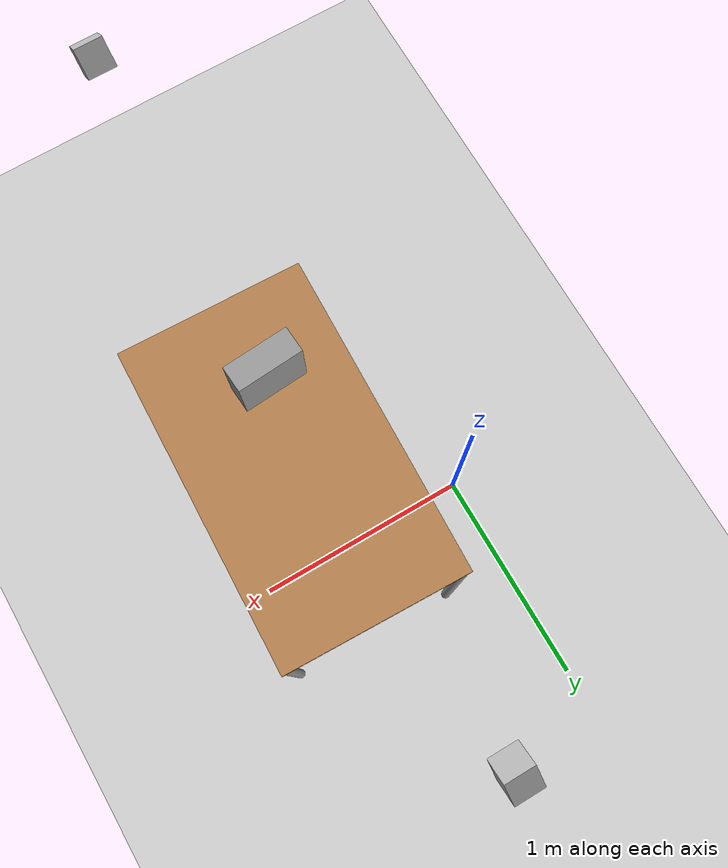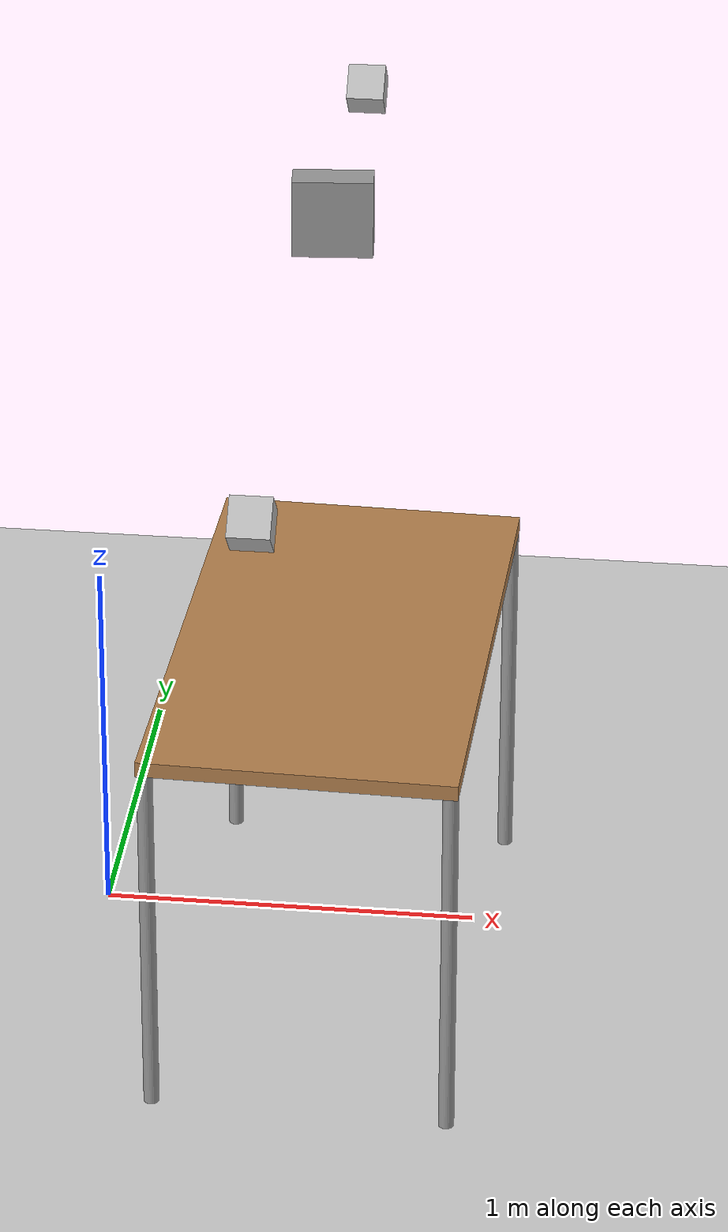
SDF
<sdf version="1.6">
 <world name="default">
  <light name="user_point_light_0" type="point">
   <pose>0.6 0.5 4 0 -0 0</pose>
   <diffuse>0.5 0.5 0.5 1</diffuse>
   <specular>0.1 0.1 0.1 1</specular>
   <attenuation>
    <range>20</range>
    <constant>0.5</constant>
    <linear>0.01</linear>
    <quadratic>0.001</quadratic>
   </attenuation>
   <cast_shadows>0</cast_shadows>
   <direction>0 0 -1</direction>
  </light>
  <light name="user_point_light_1" type="point">
   <pose>0.6 -1. 4 0 -0 0</pose>
   <diffuse>0.5 0.5 0.5 1</diffuse>
   <specular>0.1 0.1 0.1 1</specular>
   <attenuation>
    <range>20</range>
    <constant>0.5</constant>
    <linear>0.01</linear>
    <quadratic>0.001</quadratic>
   </attenuation>
   <cast_shadows>0</cast_shadows>
   <direction>0 0 -1</direction>
  </light>
  <light name="sun" type="directional">
   <pose>0 0 10 0 -0 0</pose>
   <diffuse>0.8 0.8 0.8 1</diffuse>
   <specular>0.1 0.1 0.1 1</specular>
   <attenuation>
    <range>1000</range>
    <constant>0.9</constant>
    <linear>0.01</linear>
    <quadratic>0.001</quadratic>
   </attenuation>
   <direction>-0.5 0.5 -1</direction>
  </light>
  <model name="ground_plane">
   <static>1</static>
   <link name="link">
    <collision name="collision">
     <geometry><plane><normal>0 0 1</normal><size>100 100</size></plane></geometry>
     <surface><friction><ode><mu>100</mu><mu2>50</mu2></ode></friction></surface>
    </collision>
    <visual name="visual">
     <cast_shadows>0</cast_shadows>
     <geometry><plane><normal>0 0 1</normal><size>100 100</size></plane></geometry>
     <material>
      <script><uri>file://media/materials/scripts/gazebo.material</uri><name>Gazebo/Grey</name></script>
     </material>
    </visual>
   </link>
  </model>
  <gravity>0 0 -9.8</gravity>
  <magnetic_field>6e-06 2.3e-05 -4.2e-05</magnetic_field>
  <atmosphere type="adiabatic"/>
  <physics name="default_physics" default="0" type="ode">
   <max_step_size>0.001</max_step_size>
   <real_time_factor>1</real_time_factor>
   <real_time_update_rate>1000</real_time_update_rate>
  </physics>
  <scene><ambient>0.4 0.4 0.4 1</ambient><background>0.7 0.7 0.7 1</background><shadows>1</shadows></scene>
  <spherical_coordinates>
   <surface_model>EARTH_WGS84</surface_model>
   <latitude_deg>0</latitude_deg>
   <longitude_deg>0</longitude_deg>
   <elevation>0</elevation>
   <heading_deg>0</heading_deg>
  </spherical_coordinates>
  <model name="demo_table1">
   <link name="link">
    <pose>-1.11781 1.78287 0 0 -0 0</pose>
    <inertial>
     <inertia><ixx>100</ixx><ixy>0</ixy><ixz>0</ixz><iyy>100</iyy><iyz>0</iyz><izz>100</izz></inertia>
     <mass>1000</mass>
     <pose>0 0 0.5 0 -0 0</pose>
    </inertial>
    <visual name="front_left_leg">
     <pose>0.68 0.38 0.5 0 -0 0</pose>
     <geometry><cylinder><radius>0.02</radius><length>1</length></cylinder></geometry>
     <material>
      <script><uri>file://media/materials/scripts/gazebo.material</uri><name>Gazebo/Grey</name></script>
      <ambient>0.3 0.3 0.3 1</ambient>
      <diffuse>0.7 0.7 0.7 1</diffuse>
      <specular>0.01 0.01 0.01 1</specular>
      <emissive>0 0 0 1</emissive>
      <shader type="vertex"><normal_map>__default__</normal_map></shader>
     </material>
    </visual>
    <visual name="visual1">
     <pose>0 0 1 0 -0 0</pose>
     <geometry><box><size>1.4 0.8 0.04</size></box></geometry>
     <material>
      <script><uri>file://media/materials/scripts/gazebo.material</uri><name>Gazebo/Wood</name></script>
      <ambient>1 1 1 1</ambient>
      <diffuse>1 1 1 1</diffuse>
      <specular>0.2 0.2 0.2 1</specular>
      <emissive>0 0 0 1</emissive>
      <shader type="vertex"><normal_map>__default__</normal_map></shader>
     </material>
    </visual>
    <visual name="front_right_leg">
     <pose>0.68 -0.38 0.5 0 -0 0</pose>
     <geometry><cylinder><radius>0.02</radius><length>1</length></cylinder></geometry>
     <material>
      <script><uri>file://media/materials/scripts/gazebo.material</uri><name>Gazebo/Grey</name></script>
      <ambient>0.3 0.3 0.3 1</ambient>
      <diffuse>0.7 0.7 0.7 1</diffuse>
      <specular>0.01 0.01 0.01 1</specular>
      <emissive>0 0 0 1</emissive>
      <shader type="vertex"><normal_map>__default__</normal_map></shader>
     </material>
    </visual>
    <visual name="back_right_leg">
     <pose>-0.68 -0.38 0.5 0 -0 0</pose>
     <geometry><cylinder><radius>0.02</radius><length>1</length></cylinder></geometry>
     <material>
      <script><uri>file://media/materials/scripts/gazebo.material</uri><name>Gazebo/Grey</name></script>
      <ambient>0.3 0.3 0.3 1</ambient>
      <diffuse>0.7 0.7 0.7 1</diffuse>
      <specular>0.01 0.01 0.01 1</specular>
      <emissive>0 0 0 1</emissive>
      <shader type="vertex"><normal_map>__default__</normal_map></shader>
     </material>
    </visual>
    <visual name="back_left_leg">
     <pose>-0.68 0.38 0.5 0 -0 0</pose>
     <geometry><cylinder><radius>0.02</radius><length>1</length></cylinder></geometry>
     <material>
      <script><uri>file://media/materials/scripts/gazebo.material</uri><name>Gazebo/Grey</name></script>
      <ambient>0.3 0.3 0.3 1</ambient>
      <diffuse>0.7 0.7 0.7 1</diffuse>
      <specular>0.01 0.01 0.01 1</specular>
      <emissive>0 0 0 1</emissive>
      <shader type="vertex"><normal_map>__default__</normal_map></shader>
     </material>
    </visual>
    <collision name="back_right_leg">
     <pose>-0.68 -0.38 0.5 0 -0 0</pose>
     <geometry><cylinder><radius>0.02</radius><length>1</length></cylinder></geometry>
     <surface>
      <friction>
       <ode><mu>1</mu><mu2>1</mu2><fdir1>0 0 0</fdir1><slip1>0</slip1><slip2>0</slip2></ode>
       <torsional>
        <coefficient>1</coefficient>
        <patch_radius>0</patch_radius>
        <surface_radius>0</surface_radius>
        <use_patch_radius>1</use_patch_radius>
        <ode><slip>0</slip></ode>
       </torsional>
      </friction>
      <bounce><restitution_coefficient>0</restitution_coefficient><threshold>1e+06</threshold></bounce>
      <contact>
       <collide_without_contact>0</collide_without_contact>
       <collide_without_contact_bitmask>1</collide_without_contact_bitmask>
       <collide_bitmask>1</collide_bitmask>
       <ode>
        <soft_cfm>0</soft_cfm>
        <soft_erp>0.2</soft_erp>
        <kp>1e+13</kp>
        <kd>1</kd>
        <max_vel>0.01</max_vel>
        <min_depth>0</min_depth>
       </ode>
       <bullet>
        <split_impulse>1</split_impulse>
        <split_impulse_penetration_threshold>-0.01</split_impulse_penetration_threshold>
        <soft_cfm>0</soft_cfm>
        <soft_erp>0.2</soft_erp>
        <kp>1e+13</kp>
        <kd>1</kd>
       </bullet>
      </contact>
     </surface>
    </collision>
    <collision name="surface">
     <pose>0 0 1 0 -0 0</pose>
     <geometry><box><size>1.5 0.8 0.03</size></box></geometry>
     <surface>
      <friction>
       <ode><mu>0.6</mu><mu2>0.6</mu2><fdir1>0 0 0</fdir1><slip1>0</slip1><slip2>0</slip2></ode>
       <torsional>
        <coefficient>1</coefficient>
        <patch_radius>0</patch_radius>
        <surface_radius>0</surface_radius>
        <use_patch_radius>1</use_patch_radius>
        <ode><slip>0</slip></ode>
       </torsional>
      </friction>
      <bounce><restitution_coefficient>0</restitution_coefficient><threshold>1e+06</threshold></bounce>
      <contact>
       <collide_without_contact>0</collide_without_contact>
       <collide_without_contact_bitmask>1</collide_without_contact_bitmask>
       <collide_bitmask>1</collide_bitmask>
       <ode>
        <soft_cfm>0</soft_cfm>
        <soft_erp>0.2</soft_erp>
        <kp>1e+13</kp>
        <kd>1</kd>
        <max_vel>0.01</max_vel>
        <min_depth>0</min_depth>
       </ode>
       <bullet>
        <split_impulse>1</split_impulse>
        <split_impulse_penetration_threshold>-0.01</split_impulse_penetration_threshold>
        <soft_cfm>0</soft_cfm>
        <soft_erp>0.2</soft_erp>
        <kp>1e+13</kp>
        <kd>1</kd>
       </bullet>
      </contact>
     </surface>
    </collision>
    <collision name="front_right_leg">
     <pose>0.68 -0.38 0.5 0 -0 0</pose>
     <geometry><cylinder><radius>0.02</radius><length>1</length></cylinder></geometry>
     <surface>
      <friction>
       <ode><mu>1</mu><mu2>1</mu2><fdir1>0 0 0</fdir1><slip1>0</slip1><slip2>0</slip2></ode>
       <torsional>
        <coefficient>1</coefficient>
        <patch_radius>0</patch_radius>
        <surface_radius>0</surface_radius>
        <use_patch_radius>1</use_patch_radius>
        <ode><slip>0</slip></ode>
       </torsional>
      </friction>
      <bounce><restitution_coefficient>0</restitution_coefficient><threshold>1e+06</threshold></bounce>
      <contact>
       <collide_without_contact>0</collide_without_contact>
       <collide_without_contact_bitmask>1</collide_without_contact_bitmask>
       <collide_bitmask>1</collide_bitmask>
       <ode>
        <soft_cfm>0</soft_cfm>
        <soft_erp>0.2</soft_erp>
        <kp>1e+13</kp>
        <kd>1</kd>
        <max_vel>0.01</max_vel>
        <min_depth>0</min_depth>
       </ode>
       <bullet>
        <split_impulse>1</split_impulse>
        <split_impulse_penetration_threshold>-0.01</split_impulse_penetration_threshold>
        <soft_cfm>0</soft_cfm>
        <soft_erp>0.2</soft_erp>
        <kp>1e+13</kp>
        <kd>1</kd>
       </bullet>
      </contact>
     </surface>
    </collision>
    <collision name="back_left_leg">
     <pose>-0.68 0.38 0.5 0 -0 0</pose>
     <geometry><cylinder><radius>0.02</radius><length>1</length></cylinder></geometry>
     <surface>
      <friction>
       <ode><mu>1</mu><mu2>1</mu2><fdir1>0 0 0</fdir1><slip1>0</slip1><slip2>0</slip2></ode>
       <torsional>
        <coefficient>1</coefficient>
        <patch_radius>0</patch_radius>
        <surface_radius>0</surface_radius>
        <use_patch_radius>1</use_patch_radius>
        <ode><slip>0</slip></ode>
       </torsional>
      </friction>
      <bounce><restitution_coefficient>0</restitution_coefficient><threshold>1e+06</threshold></bounce>
      <contact>
       <collide_without_contact>0</collide_without_contact>
       <collide_without_contact_bitmask>1</collide_without_contact_bitmask>
       <collide_bitmask>1</collide_bitmask>
       <ode>
        <soft_cfm>0</soft_cfm>
        <soft_erp>0.2</soft_erp>
        <kp>1e+13</kp>
        <kd>1</kd>
        <max_vel>0.01</max_vel>
        <min_depth>0</min_depth>
       </ode>
       <bullet>
        <split_impulse>1</split_impulse>
        <split_impulse_penetration_threshold>-0.01</split_impulse_penetration_threshold>
        <soft_cfm>0</soft_cfm>
        <soft_erp>0.2</soft_erp>
        <kp>1e+13</kp>
        <kd>1</kd>
       </bullet>
      </contact>
     </surface>
    </collision>
    <collision name="front_left_leg">
     <pose>0.68 0.38 0.5 0 -0 0</pose>
     <geometry><cylinder><radius>0.02</radius><length>1</length></cylinder></geometry>
     <surface>
      <friction>
       <ode><mu>1</mu><mu2>1</mu2><fdir1>0 0 0</fdir1><slip1>0</slip1><slip2>0</slip2></ode>
       <torsional>
        <coefficient>1</coefficient>
        <patch_radius>0</patch_radius>
        <surface_radius>0</surface_radius>
        <use_patch_radius>1</use_patch_radius>
        <ode><slip>0</slip></ode>
       </torsional>
      </friction>
      <bounce><restitution_coefficient>0</restitution_coefficient><threshold>1e+06</threshold></bounce>
      <contact>
       <collide_without_contact>0</collide_without_contact>
       <collide_without_contact_bitmask>1</collide_without_contact_bitmask>
       <collide_bitmask>1</collide_bitmask>
       <ode>
        <soft_cfm>0</soft_cfm>
        <soft_erp>0.2</soft_erp>
        <kp>1e+13</kp>
        <kd>1</kd>
        <max_vel>0.01</max_vel>
        <min_depth>0</min_depth>
       </ode>
       <bullet>
        <split_impulse>1</split_impulse>
        <split_impulse_penetration_threshold>-0.01</split_impulse_penetration_threshold>
        <soft_cfm>0</soft_cfm>
        <soft_erp>0.2</soft_erp>
        <kp>1e+13</kp>
        <kd>1</kd>
       </bullet>
      </contact>
     </surface>
    </collision>
   </link>
   <static>1</static>
   <pose>-1.16173 -1.32949 -6e-05 0 1e-06 -1.60293</pose>
  </model>
  <model name="object">
   <link name="link">
    <pose>0.15 0.2 1 -0 -0 -0</pose>
    <inertial>
     <mass>1</mass>
     <inertia><ixx>0.01</ixx><ixy>0</ixy><ixz>0</ixz><iyy>0.01</iyy><iyz>0</iyz><izz>0.008</izz></inertia>
    </inertial>
    <visual name="visual">
     <geometry><box><size>0.2 0.08 0.2</size></box></geometry>
     <material>
      <script><name>Gazebo/Grey</name><uri>file://media/materials/scripts/gazebo.material</uri></script>
      <ambient>0.3 0.3 0.3 1</ambient>
      <diffuse>0.7 0.7 0.7 1</diffuse>
      <specular>0.01 0.01 0.01 1</specular>
      <emissive>0 0 0 1</emissive>
      <shader type="vertex"><normal_map>__default__</normal_map></shader>
     </material>
    </visual>
    <collision name="collision">
     <geometry><box><size>0.2 0.08 0.2</size></box></geometry>
     <surface>
      <friction>
       <ode><mu>10000</mu><mu2>10000</mu2><fdir1>0 0 0</fdir1><slip1>0</slip1><slip2>0</slip2></ode>
       <torsional>
        <coefficient>1</coefficient>
        <patch_radius>0</patch_radius>
        <surface_radius>0</surface_radius>
        <use_patch_radius>1</use_patch_radius>
        <ode><slip>0</slip></ode>
       </torsional>
      </friction>
      <bounce><restitution_coefficient>0</restitution_coefficient><threshold>1e+06</threshold></bounce>
      <contact>
       <collide_without_contact>0</collide_without_contact>
       <collide_without_contact_bitmask>1</collide_without_contact_bitmask>
       <collide_bitmask>1</collide_bitmask>
       <ode>
        <soft_cfm>0</soft_cfm>
        <soft_erp>0.2</soft_erp>
        <kp>1e+13</kp>
        <kd>1</kd>
        <max_vel>0.01</max_vel>
        <min_depth>0</min_depth>
       </ode>
       <bullet>
        <split_impulse>1</split_impulse>
        <split_impulse_penetration_threshold>-0.01</split_impulse_penetration_threshold>
        <soft_cfm>0</soft_cfm>
        <soft_erp>0.2</soft_erp>
        <kp>1e+13</kp>
        <kd>1</kd>
       </bullet>
      </contact>
     </surface>
    </collision>
   </link>
   <static>0</static>
   <pose>0.510386 -0.463749 1.19869 1e-06 -0 0.073329</pose>
  </model>
  <model name="kinect">
   <static>1</static>
   <pose>0.6 1 2 0 0.785 -1.57</pose>
   <link name="link">
    <inertial>
     <mass>0.1</mass>
     <inertia><ixx>1</ixx><ixy>0</ixy><ixz>0</ixz><iyy>1</iyy><iyz>0</iyz><izz>1</izz></inertia>
    </inertial>
    <collision name="collision"><geometry><box><size>0.073 0.276 0.072</size></box></geometry></collision>
    <visual name="visual"><geometry><box><size>0.1 0.1 0.1</size></box></geometry></visual>
    <sensor name="camera" type="depth">
     <update_rate>20</update_rate>
     <camera name="__default__">
      <horizontal_fov>1.0472</horizontal_fov>
      <image><width>640</width><height>480</height><format>R8G8B8</format></image>
      <clip><near>0.01</near><far>5</far></clip>
     </camera>
     <plugin filename="libgazebo_ros_openni_kinect.so" name="kinect_camera_controller">
      <cameraName>robot1_camera</cameraName>
      <alwaysOn>true</alwaysOn>
      <updateRate>20.0</updateRate>
      <imageTopicName>rgb/image_raw</imageTopicName>
      <depthImageTopicName>depth/image_raw</depthImageTopicName>
      <pointCloudTopicName>depth/points</pointCloudTopicName>
      <cameraInfoTopicName>rgb/camera_info</cameraInfoTopicName>
      <depthImageCameraInfoTopicName>depth/camera_info</depthImageCameraInfoTopicName>
      <frameName>robot1_tf/camera1_stand</frameName>
      <baseline>0.2</baseline>
      <distortion_k1>0.00000001</distortion_k1>
      <distortion_k2>0.00000001</distortion_k2>
      <distortion_k3>0.00000001</distortion_k3>
      <distortion_t1>0.00000001</distortion_t1>
      <distortion_t2>0.00000001</distortion_t2>
      <pointCloudCutoff>0.5</pointCloudCutoff>
      <robotNamespace>/</robotNamespace>
     </plugin>
    </sensor>
   </link>
  </model>
  <joint name="joint_to_world" type="fixed"><parent>world</parent><child>link::link</child></joint>
  <atmosphere type="adiabatic"/>
  <scene><sky><clouds><speed>12</speed></clouds></sky></scene>
  <model name="kinect">
   <static>1</static>
   <pose>0.6 -1.5 2 0 0.785 1.57</pose>
   <link name="link">
    <inertial>
     <mass>0.1</mass>
     <inertia><ixx>1</ixx><ixy>0</ixy><ixz>0</ixz><iyy>1</iyy><iyz>0</iyz><izz>1</izz></inertia>
    </inertial>
    <collision name="collision"><geometry><box><size>0.073 0.276 0.072</size></box></geometry></collision>
    <visual name="visual"><geometry><box><size>0.1 0.1 0.1</size></box></geometry></visual>
    <sensor name="camera" type="depth">
     <update_rate>20</update_rate>
     <camera name="__default__">
      <horizontal_fov>1.0472</horizontal_fov>
      <image><width>640</width><height>480</height><format>R8G8B8</format></image>
      <clip><near>0.01</near><far>5</far></clip>
     </camera>
     <plugin filename="libgazebo_ros_openni_kinect.so" name="kinect_camera_controller">
      <cameraName>robot2_camera</cameraName>
      <alwaysOn>true</alwaysOn>
      <updateRate>20.0</updateRate>
      <imageTopicName>rgb/image_raw</imageTopicName>
      <depthImageTopicName>depth/image_raw</depthImageTopicName>
      <pointCloudTopicName>depth/points</pointCloudTopicName>
      <cameraInfoTopicName>rgb/camera_info</cameraInfoTopicName>
      <depthImageCameraInfoTopicName>depth/camera_info</depthImageCameraInfoTopicName>
      <frameName>robot2_tf/camera2_stand</frameName>
      <baseline>0.2</baseline>
      <distortion_k1>0.00000001</distortion_k1>
      <distortion_k2>0.00000001</distortion_k2>
      <distortion_k3>0.00000001</distortion_k3>
      <distortion_t1>0.00000001</distortion_t1>
      <distortion_t2>0.00000001</distortion_t2>
      <pointCloudCutoff>0.5</pointCloudCutoff>
      <robotNamespace>/</robotNamespace>
     </plugin>
    </sensor>
   </link>
  </model>
  <plugin name="dynamic_world_plugin" filename="libdynamic_world_plugin.so">
   <update_frequency>1.0</update_frequency>
   <x_max>0.5</x_max>
   <x_min>0.1</x_min>
   <y_max>0.5</y_max>
   <y_min>0.1</y_min>
   <z_max>0.7</z_max>
   <z_min>0.7</z_min>
   <model_to_track_name>object</model_to_track_name>
   <x_max_distractors>0.5</x_max_distractors>
   <x_min_distractors>0.1</x_min_distractors>
   <y_max_distractors>0.5</y_max_distractors>
   <y_min_distractors>0.1</y_min_distractors>
   <z_max_distractors>0.7</z_max_distractors>
   <z_min_distractors>0.7</z_min_distractors>
   <z_increment_percentage>0.1</z_increment_percentage>
   <roll_max>1.57</roll_max>
   <roll_min>-1.57</roll_min>
   <pitch_max>1.57</pitch_max>
   <pitch_min>-1.57</pitch_min>
   <yaw_max>1.57</yaw_max>
   <yaw_min>-1.57</yaw_min>
   <light_x_max>2.3</light_x_max>
   <light_x_min>-1.7</light_x_min>
   <light_y_max>2.3</light_y_max>
   <light_y_min>-1.7</light_y_min>
   <light_z_max>3.0</light_z_max>
   <light_z_min>1.0</light_z_min>
   <light_roll_max>1.57</light_roll_max>
   <light_roll_min>-1.57</light_roll_min>
   <light_pitch_max>1.57</light_pitch_max>
   <light_pitch_min>-1.57</light_pitch_min>
   <light_yaw_max>1.57</light_yaw_max>
   <light_yaw_min>-1.57</light_yaw_min>
   <cam_x_max>-0.315121</cam_x_max>
   <cam_x_min>-0.515121</cam_x_min>
   <cam_y_max>0.4</cam_y_max>
   <cam_y_min>0.2</cam_y_min>
   <cam_z_max>1.192078</cam_z_max>
   <cam_z_min>0.992078</cam_z_min>
   <cam_roll_max>0.03</cam_roll_max>
   <cam_roll_min>-0.03</cam_roll_min>
   <cam_pitch_max>0.7291</cam_pitch_max>
   <cam_pitch_min>0.6691</cam_pitch_min>
   <cam_yaw_max>0.03</cam_yaw_max>
   <cam_yaw_min>-0.03</cam_yaw_min>
  </plugin>
 </world>
</sdf>
